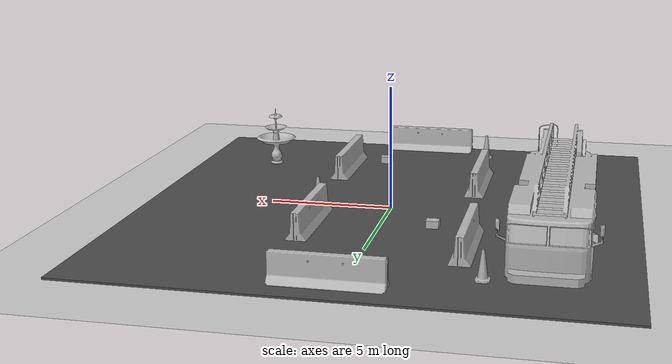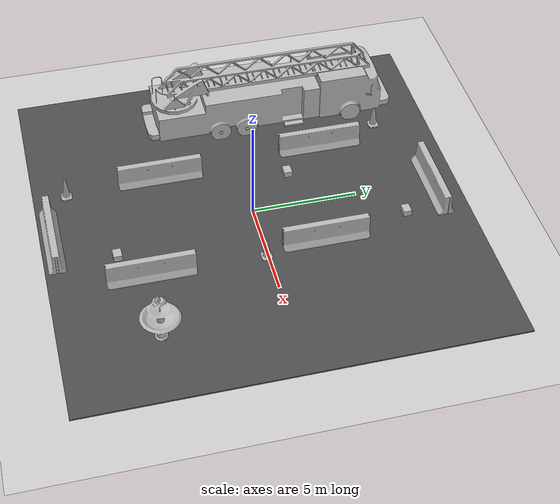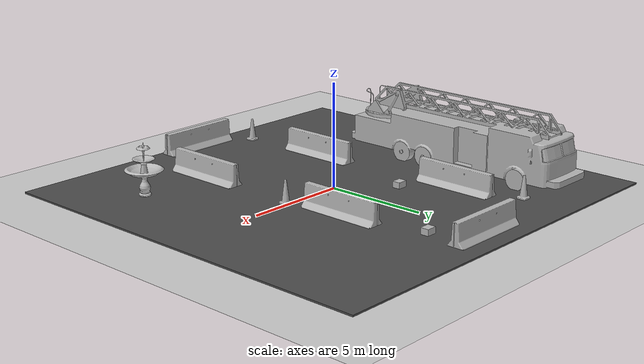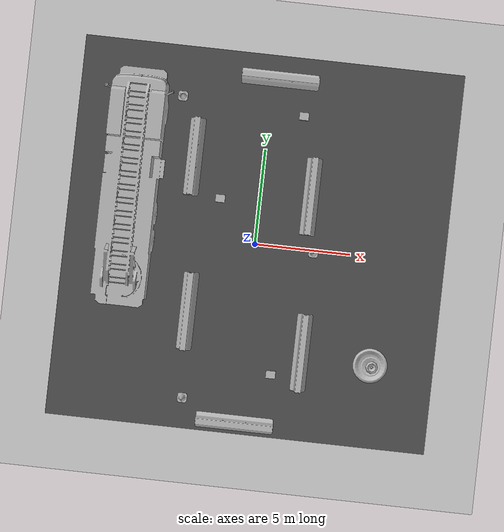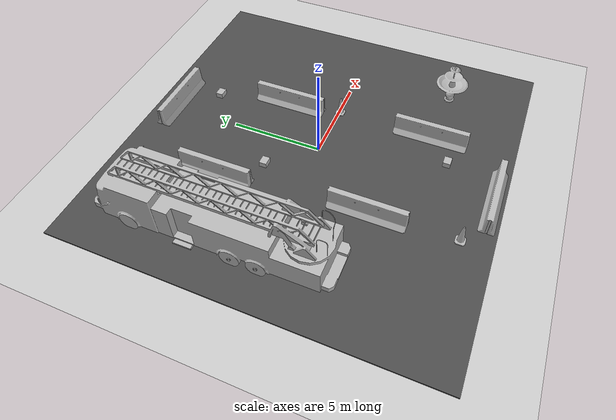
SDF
<sdf version="1.7">
 <world name="default">
  <light name="sun" type="directional">
   <pose>0 0 10 0 -0 0</pose>
   <diffuse>0.8 0.8 0.8 1</diffuse>
   <specular>0.2 0.2 0.2 1</specular>
   <attenuation>
    <range>1000</range>
    <constant>0.9</constant>
    <linear>0.01</linear>
    <quadratic>0.001</quadratic>
   </attenuation>
   <direction>-0.5 0.1 -0.9</direction>
   <spot><inner_angle>0</inner_angle><outer_angle>0</outer_angle><falloff>0</falloff></spot>
  </light>
  <model name="ground_plane">
   <static>1</static>
   <link name="link">
    <collision name="collision">
     <geometry><plane><normal>0 0 1</normal><size>100 100</size></plane></geometry>
     <surface>
      <contact><collide_bitmask>65535</collide_bitmask></contact>
      <friction><ode><mu>100</mu><mu2>50</mu2></ode></friction>
     </surface>
    </collision>
    <visual name="visual">
     <cast_shadows>0</cast_shadows>
     <geometry><plane><normal>0 0 1</normal><size>100 100</size></plane></geometry>
     <material>
      <script><uri>file://media/materials/scripts/gazebo.material</uri><name>Gazebo/Grey</name></script>
     </material>
    </visual>
   </link>
  </model>
  <gravity>0 0 -9.8</gravity>
  <magnetic_field>6e-06 2.3e-05 -4.2e-05</magnetic_field>
  <atmosphere type="adiabatic"/>
  <physics type="ode">
   <max_step_size>0.001</max_step_size>
   <real_time_factor>1</real_time_factor>
   <real_time_update_rate>1000</real_time_update_rate>
  </physics>
  <scene><ambient>0.4 0.4 0.4 1</ambient><background>0.7 0.7 0.7 1</background><shadows>1</shadows></scene>
  <spherical_coordinates>
   <surface_model>EARTH_WGS84</surface_model>
   <latitude_deg>0</latitude_deg>
   <longitude_deg>0</longitude_deg>
   <elevation>0</elevation>
   <heading_deg>0</heading_deg>
  </spherical_coordinates>
  <model name="asphalt_plane">
   <static>1</static>
   <link name="link">
    <collision name="collision"><geometry><box><size>20 20 0.1</size></box></geometry></collision>
    <visual name="visual">
     <cast_shadows>0</cast_shadows>
     <geometry><box><size>20 20 0.1</size></box></geometry>
     <material>
      <script>
       <uri>model://asphalt_plane/materials/scripts</uri>
       <uri>model://asphalt_plane/materials/textures</uri>
       <name>vrc/asphalt</name>
      </script>
     </material>
    </visual>
   </link>
  </model>
  <model name="cardboard_box">
   <pose>1.54469 -6.68326 0.199 0 -0 0</pose>
   <link name="link">
    <inertial>
     <mass>2</mass>
     <inertia>
      <ixx>0.0416667</ixx>
      <ixy>0</ixy>
      <ixz>0</ixz>
      <iyy>0.0566667</iyy>
      <iyz>0</iyz>
      <izz>0.0683333</izz>
     </inertia>
    </inertial>
    <collision name="collision">
     <geometry><box><size>0.5 0.4 0.3</size></box></geometry>
     <surface>
      <friction><ode><mu>1</mu><mu2>1</mu2></ode></friction>
      <contact><ode><kp>1e+07</kp><kd>1</kd><min_depth>0.001</min_depth><max_vel>0.1</max_vel></ode></contact>
     </surface>
    </collision>
    <visual name="visual">
     <pose>0 0 -0.15 0 -0 0</pose>
     <geometry>
      <mesh><uri>model://cardboard_box/meshes/cardboard_box.dae</uri><scale>1.25932 1.00745 0.755591</scale></mesh>
     </geometry>
    </visual>
   </link>
  </model>
  <model name="cardboard_box_0">
   <pose>1.82217 6.94102 0.199 0 -0 0</pose>
   <link name="link">
    <inertial>
     <mass>2</mass>
     <inertia>
      <ixx>0.0416667</ixx>
      <ixy>0</ixy>
      <ixz>0</ixz>
      <iyy>0.0566667</iyy>
      <iyz>0</iyz>
      <izz>0.0683333</izz>
     </inertia>
    </inertial>
    <collision name="collision">
     <geometry><box><size>0.5 0.4 0.3</size></box></geometry>
     <surface>
      <friction><ode><mu>1</mu><mu2>1</mu2></ode></friction>
      <contact><ode><kp>1e+07</kp><kd>1</kd><min_depth>0.001</min_depth><max_vel>0.1</max_vel></ode></contact>
     </surface>
    </collision>
    <visual name="visual">
     <pose>0 0 -0.15 0 -0 0</pose>
     <geometry>
      <mesh><uri>model://cardboard_box/meshes/cardboard_box.dae</uri><scale>1.25932 1.00745 0.755591</scale></mesh>
     </geometry>
    </visual>
   </link>
  </model>
  <model name="cardboard_box_1">
   <pose>-2.0753 2.19846 0.199 0 -0 0</pose>
   <link name="link">
    <inertial>
     <mass>2</mass>
     <inertia>
      <ixx>0.0416667</ixx>
      <ixy>0</ixy>
      <ixz>0</ixz>
      <iyy>0.0566667</iyy>
      <iyz>0</iyz>
      <izz>0.0683333</izz>
     </inertia>
    </inertial>
    <collision name="collision">
     <geometry><box><size>0.5 0.4 0.3</size></box></geometry>
     <surface>
      <friction><ode><mu>1</mu><mu2>1</mu2></ode></friction>
      <contact><ode><kp>1e+07</kp><kd>1</kd><min_depth>0.001</min_depth><max_vel>0.1</max_vel></ode></contact>
     </surface>
    </collision>
    <visual name="visual">
     <pose>0 0 -0.15 0 -0 0</pose>
     <geometry>
      <mesh><uri>model://cardboard_box/meshes/cardboard_box.dae</uri><scale>1.25932 1.00745 0.755591</scale></mesh>
     </geometry>
    </visual>
   </link>
  </model>
  <model name="jersey_barrier">
   <static>1</static>
   <link name="link">
    <visual name="visual">
     <geometry><mesh><uri>model://jersey_barrier/meshes/jersey_barrier.dae</uri></mesh></geometry>
    </visual>
    <collision name="upright">
     <pose>0 0 0.5715 0 -0 0</pose>
     <geometry><box><size>4.06542 0.3063 1.143</size></box></geometry>
    </collision>
    <collision name="base">
     <pose>0 0 0.032258 0 -0 0</pose>
     <geometry><box><size>4.06542 0.8107 0.064516</size></box></geometry>
    </collision>
    <collision name="base2">
     <pose>0 0 0.1 0 -0 0</pose>
     <geometry><box><size>4.06542 0.65 0.1</size></box></geometry>
    </collision>
    <collision name="base3">
     <pose>0 0 0.2 0 -0 0</pose>
     <geometry><box><size>4.06542 0.5 0.1</size></box></geometry>
    </collision>
    <collision name="left-angle">
     <pose>0 -0.224 0.2401 0.9 -0 0</pose>
     <geometry><box><size>4.06542 0.5 0.064516</size></box></geometry>
    </collision>
    <collision name="right-angle">
     <pose>0 0.224 0.2401 -0.9 0 0</pose>
     <geometry><box><size>4.06542 0.5 0.064516</size></box></geometry>
    </collision>
   </link>
   <pose>-3.65879 4.23192 0 0 -0 1.57</pose>
  </model>
  <model name="jersey_barrier_1">
   <static>1</static>
   <link name="link">
    <visual name="visual">
     <geometry><mesh><uri>model://jersey_barrier/meshes/jersey_barrier.dae</uri></mesh></geometry>
    </visual>
    <collision name="upright">
     <pose>0 0 0.5715 0 -0 0</pose>
     <geometry><box><size>4.06542 0.3063 1.143</size></box></geometry>
    </collision>
    <collision name="base">
     <pose>0 0 0.032258 0 -0 0</pose>
     <geometry><box><size>4.06542 0.8107 0.064516</size></box></geometry>
    </collision>
    <collision name="base2">
     <pose>0 0 0.1 0 -0 0</pose>
     <geometry><box><size>4.06542 0.65 0.1</size></box></geometry>
    </collision>
    <collision name="base3">
     <pose>0 0 0.2 0 -0 0</pose>
     <geometry><box><size>4.06542 0.5 0.1</size></box></geometry>
    </collision>
    <collision name="left-angle">
     <pose>0 -0.224 0.2401 0.9 -0 0</pose>
     <geometry><box><size>4.06542 0.5 0.064516</size></box></geometry>
    </collision>
    <collision name="right-angle">
     <pose>0 0.224 0.2401 -0.9 0 0</pose>
     <geometry><box><size>4.06542 0.5 0.064516</size></box></geometry>
    </collision>
   </link>
   <pose>-0.068928 -9.42298 0 0 -0 0</pose>
  </model>
  <model name="jersey_barrier_2">
   <static>1</static>
   <link name="link">
    <visual name="visual">
     <geometry><mesh><uri>model://jersey_barrier/meshes/jersey_barrier.dae</uri></mesh></geometry>
    </visual>
    <collision name="upright">
     <pose>0 0 0.5715 0 -0 0</pose>
     <geometry><box><size>4.06542 0.3063 1.143</size></box></geometry>
    </collision>
    <collision name="base">
     <pose>0 0 0.032258 0 -0 0</pose>
     <geometry><box><size>4.06542 0.8107 0.064516</size></box></geometry>
    </collision>
    <collision name="base2">
     <pose>0 0 0.1 0 -0 0</pose>
     <geometry><box><size>4.06542 0.65 0.1</size></box></geometry>
    </collision>
    <collision name="base3">
     <pose>0 0 0.2 0 -0 0</pose>
     <geometry><box><size>4.06542 0.5 0.1</size></box></geometry>
    </collision>
    <collision name="left-angle">
     <pose>0 -0.224 0.2401 0.9 -0 0</pose>
     <geometry><box><size>4.06542 0.5 0.064516</size></box></geometry>
    </collision>
    <collision name="right-angle">
     <pose>0 0.224 0.2401 -0.9 0 0</pose>
     <geometry><box><size>4.06542 0.5 0.064516</size></box></geometry>
    </collision>
   </link>
   <pose>0.386444 8.76354 0 0 -0 0</pose>
  </model>
  <model name="jersey_barrier_clone">
   <static>1</static>
   <link name="link">
    <visual name="visual">
     <geometry><mesh><uri>model://jersey_barrier/meshes/jersey_barrier.dae</uri></mesh></geometry>
    </visual>
    <collision name="upright">
     <pose>0 0 0.5715 0 -0 0</pose>
     <geometry><box><size>4.06542 0.3063 1.143</size></box></geometry>
    </collision>
    <collision name="base">
     <pose>0 0 0.032258 0 -0 0</pose>
     <geometry><box><size>4.06542 0.8107 0.064516</size></box></geometry>
    </collision>
    <collision name="base2">
     <pose>0 0 0.1 0 -0 0</pose>
     <geometry><box><size>4.06542 0.65 0.1</size></box></geometry>
    </collision>
    <collision name="base3">
     <pose>0 0 0.2 0 -0 0</pose>
     <geometry><box><size>4.06542 0.5 0.1</size></box></geometry>
    </collision>
    <collision name="left-angle">
     <pose>0 -0.224 0.2401 0.9 -0 0</pose>
     <geometry><box><size>4.06542 0.5 0.064516</size></box></geometry>
    </collision>
    <collision name="right-angle">
     <pose>0 0.224 0.2401 -0.9 0 0</pose>
     <geometry><box><size>4.06542 0.5 0.064516</size></box></geometry>
    </collision>
   </link>
   <pose>2.64151 2.7987 0 0 -0 1.57</pose>
  </model>
  <model name="jersey_barrier_clone_clone">
   <static>1</static>
   <link name="link">
    <visual name="visual">
     <geometry><mesh><uri>model://jersey_barrier/meshes/jersey_barrier.dae</uri></mesh></geometry>
    </visual>
    <collision name="upright">
     <pose>0 0 0.5715 0 -0 0</pose>
     <geometry><box><size>4.06542 0.3063 1.143</size></box></geometry>
    </collision>
    <collision name="base">
     <pose>0 0 0.032258 0 -0 0</pose>
     <geometry><box><size>4.06542 0.8107 0.064516</size></box></geometry>
    </collision>
    <collision name="base2">
     <pose>0 0 0.1 0 -0 0</pose>
     <geometry><box><size>4.06542 0.65 0.1</size></box></geometry>
    </collision>
    <collision name="base3">
     <pose>0 0 0.2 0 -0 0</pose>
     <geometry><box><size>4.06542 0.5 0.1</size></box></geometry>
    </collision>
    <collision name="left-angle">
     <pose>0 -0.224 0.2401 0.9 -0 0</pose>
     <geometry><box><size>4.06542 0.5 0.064516</size></box></geometry>
    </collision>
    <collision name="right-angle">
     <pose>0 0.224 0.2401 -0.9 0 0</pose>
     <geometry><box><size>4.06542 0.5 0.064516</size></box></geometry>
    </collision>
   </link>
   <pose>3.02906 -5.37339 0 0 -0 1.57</pose>
  </model>
  <model name="jersey_barrier_clone_clone_0">
   <static>1</static>
   <link name="link">
    <visual name="visual">
     <geometry><mesh><uri>model://jersey_barrier/meshes/jersey_barrier.dae</uri></mesh></geometry>
    </visual>
    <collision name="upright">
     <pose>0 0 0.5715 0 -0 0</pose>
     <geometry><box><size>4.06542 0.3063 1.143</size></box></geometry>
    </collision>
    <collision name="base">
     <pose>0 0 0.032258 0 -0 0</pose>
     <geometry><box><size>4.06542 0.8107 0.064516</size></box></geometry>
    </collision>
    <collision name="base2">
     <pose>0 0 0.1 0 -0 0</pose>
     <geometry><box><size>4.06542 0.65 0.1</size></box></geometry>
    </collision>
    <collision name="base3">
     <pose>0 0 0.2 0 -0 0</pose>
     <geometry><box><size>4.06542 0.5 0.1</size></box></geometry>
    </collision>
    <collision name="left-angle">
     <pose>0 -0.224 0.2401 0.9 -0 0</pose>
     <geometry><box><size>4.06542 0.5 0.064516</size></box></geometry>
    </collision>
    <collision name="right-angle">
     <pose>0 0.224 0.2401 -0.9 0 0</pose>
     <geometry><box><size>4.06542 0.5 0.064516</size></box></geometry>
    </collision>
   </link>
   <pose>-3.14235 -3.84187 0 0 -0 1.57</pose>
  </model>
  <model name="fountain">
   <static>1</static>
   <link name="link">
    <collision name="collision">
     <geometry><mesh><uri>model://fountain/meshes/fountain.dae</uri></mesh></geometry>
    </collision>
    <visual name="visual">
     <geometry><mesh><uri>model://fountain/meshes/fountain.dae</uri></mesh></geometry>
    </visual>
   </link>
   <pose>6.57996 -5.58425 0 0 -0 0</pose>
  </model>
  <model name="fire_truck">
   <static>1</static>
   <link name="link">
    <collision name="collision">
     <geometry>
      <mesh><scale>0.1 0.1 0.1</scale><uri>model://fire_truck/meshes/fire_truck.obj</uri></mesh>
     </geometry>
    </collision>
    <visual name="visual">
     <geometry>
      <mesh><scale>0.1 0.1 0.1</scale><uri>model://fire_truck/meshes/fire_truck.obj</uri></mesh>
     </geometry>
    </visual>
   </link>
   <pose>-6.73375 2.62043 0 0 -0 0</pose>
  </model>
  <model name="Construction Cone">
   <link name="link">
    <collision name="collision">
     <geometry>
      <mesh><scale>10 10 10</scale><uri>model://construction_cone/meshes/construction_cone.dae</uri></mesh>
     </geometry>
    </collision>
    <visual name="visual">
     <geometry>
      <mesh><scale>10 10 10</scale><uri>model://construction_cone/meshes/construction_cone.dae</uri></mesh>
     </geometry>
    </visual>
    <inertial>
     <inertia><ixx>1</ixx><ixy>0</ixy><ixz>0</ixz><iyy>1</iyy><iyz>0</iyz><izz>1</izz></inertia>
     <mass>1</mass>
    </inertial>
   </link>
   <pose>-2.92756 -8.40491 0.05 1e-06 -1e-06 0</pose>
  </model>
  <model name="Construction Cone_0">
   <link name="link">
    <collision name="collision">
     <geometry>
      <mesh><scale>10 10 10</scale><uri>model://construction_cone/meshes/construction_cone.dae</uri></mesh>
     </geometry>
    </collision>
    <visual name="visual">
     <geometry>
      <mesh><scale>10 10 10</scale><uri>model://construction_cone/meshes/construction_cone.dae</uri></mesh>
     </geometry>
    </visual>
    <inertial>
     <inertia><ixx>1</ixx><ixy>0</ixy><ixz>0</ixz><iyy>1</iyy><iyz>0</iyz><izz>1</izz></inertia>
     <mass>1</mass>
    </inertial>
   </link>
   <pose>3.08416 -0.103365 0.049991 2e-06 -2e-06 -0.000256</pose>
  </model>
  <model name="Construction Cone_1">
   <link name="link">
    <collision name="collision">
     <geometry>
      <mesh><scale>10 10 10</scale><uri>model://construction_cone/meshes/construction_cone.dae</uri></mesh>
     </geometry>
    </collision>
    <visual name="visual">
     <geometry>
      <mesh><scale>10 10 10</scale><uri>model://construction_cone/meshes/construction_cone.dae</uri></mesh>
     </geometry>
    </visual>
    <inertial>
     <inertia><ixx>1</ixx><ixy>0</ixy><ixz>0</ixz><iyy>1</iyy><iyz>0</iyz><izz>1</izz></inertia>
     <mass>1</mass>
    </inertial>
   </link>
   <pose>-4.60214 7.33666 0.05 0 -1e-06 0</pose>
  </model>
 </world>
</sdf>
